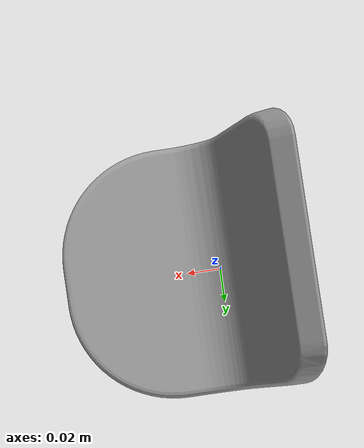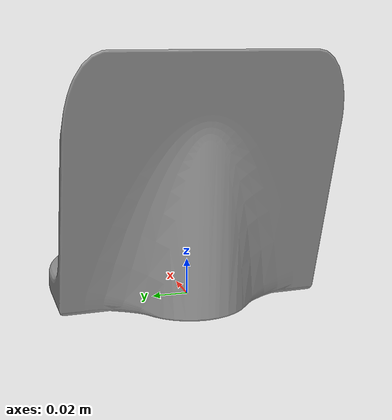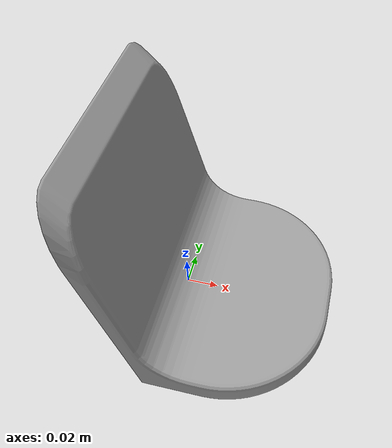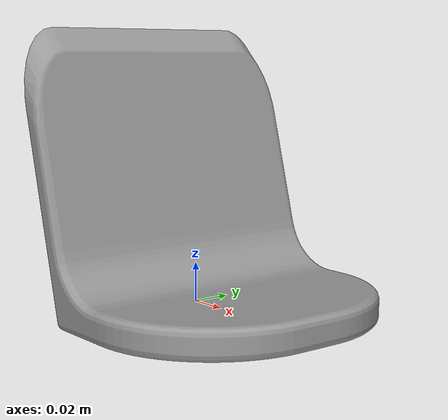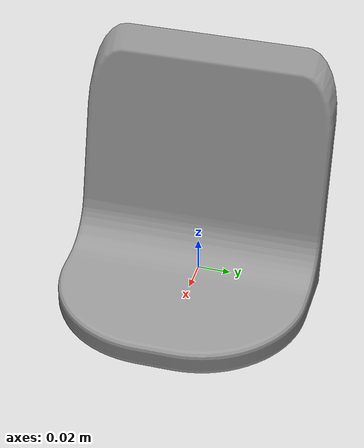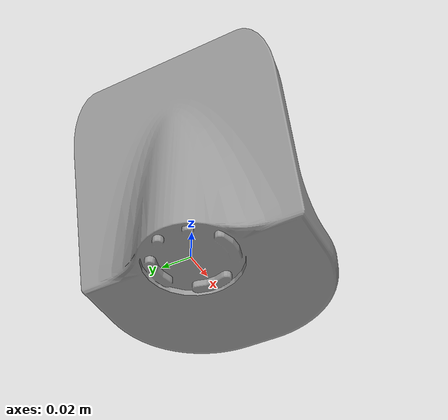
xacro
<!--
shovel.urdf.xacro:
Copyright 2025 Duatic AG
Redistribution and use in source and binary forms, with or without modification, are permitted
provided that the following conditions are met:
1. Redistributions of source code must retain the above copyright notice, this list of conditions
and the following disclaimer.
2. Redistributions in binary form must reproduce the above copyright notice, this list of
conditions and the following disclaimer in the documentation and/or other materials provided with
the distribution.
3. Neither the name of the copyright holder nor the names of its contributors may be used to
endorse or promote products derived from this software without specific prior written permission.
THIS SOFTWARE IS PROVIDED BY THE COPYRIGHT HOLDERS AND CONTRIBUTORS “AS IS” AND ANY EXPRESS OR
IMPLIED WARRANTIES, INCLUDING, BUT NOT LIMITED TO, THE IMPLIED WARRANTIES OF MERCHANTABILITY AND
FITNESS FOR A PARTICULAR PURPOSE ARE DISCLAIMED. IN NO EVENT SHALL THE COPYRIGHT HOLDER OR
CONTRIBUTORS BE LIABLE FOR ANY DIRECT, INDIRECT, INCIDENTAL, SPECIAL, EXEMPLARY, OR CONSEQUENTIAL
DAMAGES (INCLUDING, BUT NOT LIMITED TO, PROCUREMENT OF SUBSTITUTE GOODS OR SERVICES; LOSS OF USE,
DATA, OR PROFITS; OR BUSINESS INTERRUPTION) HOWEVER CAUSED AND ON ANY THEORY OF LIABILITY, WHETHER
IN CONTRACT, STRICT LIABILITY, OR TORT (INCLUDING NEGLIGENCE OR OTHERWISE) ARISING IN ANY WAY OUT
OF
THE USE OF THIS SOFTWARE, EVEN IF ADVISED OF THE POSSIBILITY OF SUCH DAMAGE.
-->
<robot name="shovel_on_world" xmlns:xacro="http://www.ros.org/wiki/xacro">

  <xacro:arg name="tf_prefix" default="" />

  <xacro:include filename="$(find dynaarm_end_effectors)/urdf/shovel.urdf.xacro" />

  <link name="base_link" />

  <!-- Add platform to base_link -->
  <xacro:shovel tf_prefix="$(arg tf_prefix)"
              parent="base_link">
    <origin xyz="0 0 0.0" rpy="0 0 0" />
  </xacro:shovel>

</robot>

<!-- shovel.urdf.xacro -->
<robot name="shovel" xmlns:xacro="http://www.ros.org/wiki/xacro">

  <!-- Link Definition -->
<xacro:macro name="shovel" params="tf_prefix parent *origin">

  <link name="${tf_prefix}shovel_link">

    <!-- Inertial Properties -->
    <inertial>
      <origin xyz="0.004832 -0.001237 0.033429" rpy="0 0 0"/>
      <mass value="0.551"/>
      <inertia
        ixx="0.001677" ixy="0.0"  ixz="-0.000509"
        iyy="0.001510" iyz="0.0"
        izz="0.001501"/>
    </inertial>

    <!-- Visual -->
    <visual>
      <origin xyz="0 0 0" rpy="0 0 0"/>
      <geometry>
      <mesh filename="file://$(find dynaarm_end_effectors)/meshes/shovel_mesh.stl" scale="1 1 1"/>
      </geometry>
      <material name="gray">
        <color rgba="0.6 0.6 0.6 1.0"/>
      </material>
    </visual>

    <collision>
      <origin xyz="0 0 0" rpy="0 0 0"/>
      <geometry>
      <mesh filename="file://$(find dynaarm_end_effectors)/meshes/shovel_mesh.stl" scale="1 1 1"/>
      </geometry>
    </collision>

  </link>

  <!-- Fixed Joint to parent link -->
  <joint name="${tf_prefix}shovel_joint" type="fixed">
    <parent link="${parent}"/>
    <child link="${tf_prefix}shovel_link"/>
    <xacro:insert_block name="origin" />
  </joint>

</xacro:macro>

</robot>
